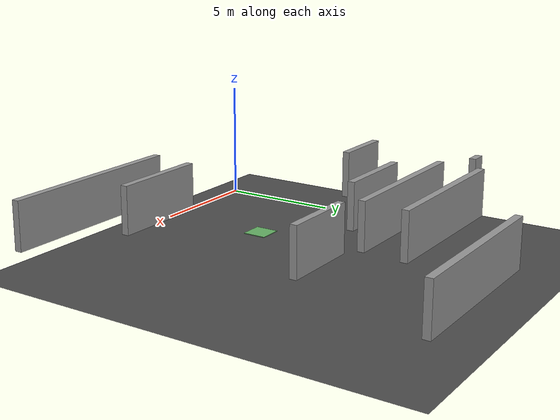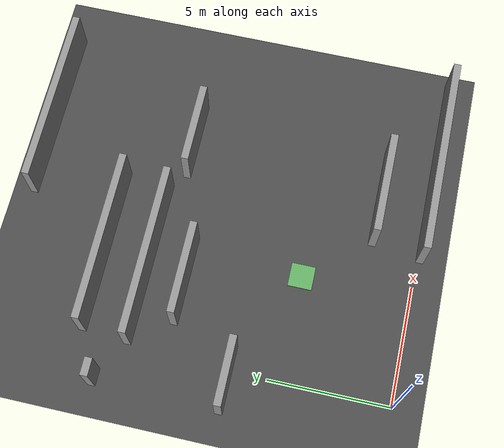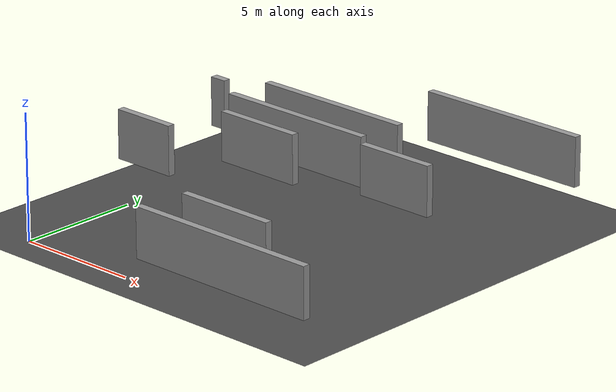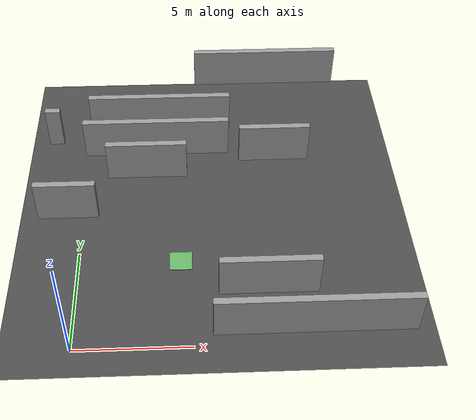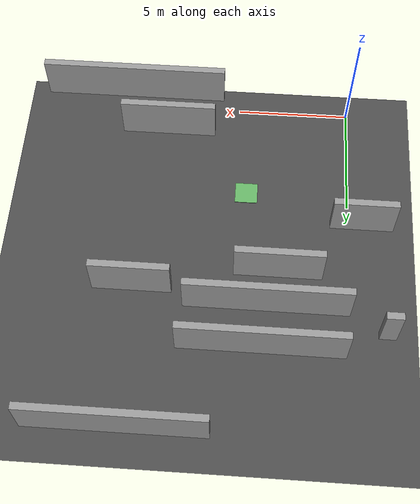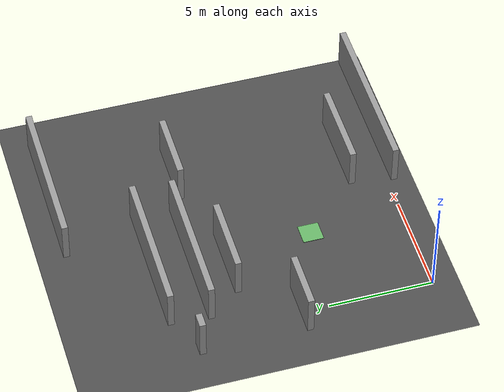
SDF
<sdf version="1.6">
 <world name="default">
  <model name="ground_plane">
   <static>1</static>
   <link name="link">
    <collision name="collision">
     <geometry><plane><normal>0 0 1</normal><size>20 20</size></plane></geometry>
     <surface><friction><ode><mu>100</mu><mu2>50</mu2></ode></friction></surface>
    </collision>
    <visual name="visual">
     <cast_shadows>0</cast_shadows>
     <geometry><plane><normal>0 0 1</normal><size>20 20</size></plane></geometry>
     <material>
      <script>
       <uri>model://asphalt_plane/materials/scripts</uri>
       <uri>model://asphalt_plane/materials/textures</uri>
       <name>vrc/asphalt</name>
      </script>
     </material>
    </visual>
   </link>
  </model>
  <model name="box_goal">
   <static>1</static>
   <link name="link">
    <inertial>
     <mass>1</mass>
     <inertia>
      <ixx>0.166667</ixx>
      <ixy>0</ixy>
      <ixz>0</ixz>
      <iyy>0.166667</iyy>
      <iyz>0</iyz>
      <izz>0.166667</izz>
     </inertia>
    </inertial>
    <visual name="visual">
     <geometry><box><size>1 1 0.1</size></box></geometry>
     <material>
      <script><name>Gazebo/Grey</name><uri>file://media/materials/scripts/gazebo.material</uri></script>
      <ambient>0.3 1 0.3 1</ambient>
      <diffuse>0.4 0.7 0.4 1</diffuse>
      <specular>0.01 0.05 0.01 1</specular>
      <emissive>0 0.02 0 1</emissive>
      <shader type="vertex"><normal_map>__default__</normal_map></shader>
     </material>
    </visual>
    <collision name="collision">
     <geometry><box><size>1 1 0.1</size></box></geometry>
     <surface>
      <friction>
       <ode><mu>1</mu><mu2>1</mu2><fdir1>0 0 0</fdir1><slip1>0</slip1><slip2>0</slip2></ode>
       <torsional>
        <coefficient>1</coefficient>
        <patch_radius>0</patch_radius>
        <surface_radius>0</surface_radius>
        <use_patch_radius>1</use_patch_radius>
        <ode><slip>0</slip></ode>
       </torsional>
      </friction>
      <bounce><restitution_coefficient>0</restitution_coefficient><threshold>1e+06</threshold></bounce>
      <contact>
       <collide_without_contact>0</collide_without_contact>
       <collide_without_contact_bitmask>1</collide_without_contact_bitmask>
       <collide_bitmask>1</collide_bitmask>
       <ode>
        <soft_cfm>0</soft_cfm>
        <soft_erp>0.2</soft_erp>
        <kp>1e+13</kp>
        <kd>1</kd>
        <max_vel>0.01</max_vel>
        <min_depth>0</min_depth>
       </ode>
       <bullet>
        <split_impulse>1</split_impulse>
        <split_impulse_penetration_threshold>-0.01</split_impulse_penetration_threshold>
        <soft_cfm>0</soft_cfm>
        <soft_erp>0.2</soft_erp>
        <kp>1e+13</kp>
        <kd>1</kd>
       </bullet>
      </contact>
     </surface>
    </collision>
   </link>
   <static>0</static>
   <pose>4.5 4.5 -0.042 0 -0 0</pose>
  </model>
  <model name="greywall_8L36S">
   <link name="link">
    <pose>4.925 0 1 0 0 0</pose>
    <inertial>
     <mass>20</mass>
     <inertia><ixx>1</ixx><ixy>0</ixy><ixz>0</ixz><iyy>1</iyy><iyz>0</iyz><izz>1</izz></inertia>
    </inertial>
    <visual name="ModelPreview_1::link::visual_1">
     <geometry><box><size>8.15 0.3 2.0</size></box></geometry>
     <material>
      <script>
       <uri>model://grey_wall/materials/scripts</uri>
       <uri>model://grey_wall/materials/textures</uri>
       <name>vrc/grey_wall</name>
      </script>
      <ambient>1 1 1 1</ambient>
      <diffuse>1 1 1 1</diffuse>
      <specular>0 0 0 1</specular>
      <emissive>0 0 0 1</emissive>
      <shader type="vertex"><normal_map>__default__</normal_map></shader>
     </material>
    </visual>
    <collision name="collision">
     <geometry><box><size>8.15 0.3 2.0</size></box></geometry>
     <surface>
      <friction>
       <ode><mu>1</mu><mu2>1</mu2><fdir1>0 0 0</fdir1><slip1>0</slip1><slip2>0</slip2></ode>
       <torsional>
        <coefficient>1</coefficient>
        <patch_radius>0</patch_radius>
        <surface_radius>0</surface_radius>
        <use_patch_radius>1</use_patch_radius>
        <ode><slip>0</slip></ode>
       </torsional>
      </friction>
      <bounce><restitution_coefficient>0</restitution_coefficient><threshold>1e+06</threshold></bounce>
      <contact>
       <collide_without_contact>0</collide_without_contact>
       <collide_without_contact_bitmask>1</collide_without_contact_bitmask>
       <collide_bitmask>1</collide_bitmask>
       <ode>
        <soft_cfm>0</soft_cfm>
        <soft_erp>0.2</soft_erp>
        <kp>1e+13</kp>
        <kd>1</kd>
        <max_vel>0.01</max_vel>
        <min_depth>0</min_depth>
       </ode>
       <bullet>
        <split_impulse>1</split_impulse>
        <split_impulse_penetration_threshold>-0.01</split_impulse_penetration_threshold>
        <soft_cfm>0</soft_cfm>
        <soft_erp>0.2</soft_erp>
        <kp>1e+13</kp>
        <kd>1</kd>
       </bullet>
      </contact>
     </surface>
    </collision>
   </link>
   <static>1</static>
   <pose>4.925 0 1 0 0 0</pose>
  </model>
  <model name="greywall_7L66W">
   <link name="link">
    <pose>7 3.575 1 0 0 1.57</pose>
    <inertial>
     <mass>20</mass>
     <inertia><ixx>1</ixx><ixy>0</ixy><ixz>0</ixz><iyy>1</iyy><iyz>0</iyz><izz>1</izz></inertia>
    </inertial>
    <visual name="ModelPreview_1::link::visual_1">
     <geometry><box><size>6.85 0.3 2.0</size></box></geometry>
     <material>
      <script>
       <uri>model://grey_wall/materials/scripts</uri>
       <uri>model://grey_wall/materials/textures</uri>
       <name>vrc/grey_wall</name>
      </script>
      <ambient>1 1 1 1</ambient>
      <diffuse>1 1 1 1</diffuse>
      <specular>0 0 0 1</specular>
      <emissive>0 0 0 1</emissive>
      <shader type="vertex"><normal_map>__default__</normal_map></shader>
     </material>
    </visual>
    <collision name="collision">
     <geometry><box><size>6.85 0.3 2.0</size></box></geometry>
     <surface>
      <friction>
       <ode><mu>1</mu><mu2>1</mu2><fdir1>0 0 0</fdir1><slip1>0</slip1><slip2>0</slip2></ode>
       <torsional>
        <coefficient>1</coefficient>
        <patch_radius>0</patch_radius>
        <surface_radius>0</surface_radius>
        <use_patch_radius>1</use_patch_radius>
        <ode><slip>0</slip></ode>
       </torsional>
      </friction>
      <bounce><restitution_coefficient>0</restitution_coefficient><threshold>1e+06</threshold></bounce>
      <contact>
       <collide_without_contact>0</collide_without_contact>
       <collide_without_contact_bitmask>1</collide_without_contact_bitmask>
       <collide_bitmask>1</collide_bitmask>
       <ode>
        <soft_cfm>0</soft_cfm>
        <soft_erp>0.2</soft_erp>
        <kp>1e+13</kp>
        <kd>1</kd>
        <max_vel>0.01</max_vel>
        <min_depth>0</min_depth>
       </ode>
       <bullet>
        <split_impulse>1</split_impulse>
        <split_impulse_penetration_threshold>-0.01</split_impulse_penetration_threshold>
        <soft_cfm>0</soft_cfm>
        <soft_erp>0.2</soft_erp>
        <kp>1e+13</kp>
        <kd>1</kd>
       </bullet>
      </contact>
     </surface>
    </collision>
   </link>
   <static>1</static>
   <pose>7 3.575 1 0 0 1.57</pose>
  </model>
  <model name="greywall_7L76W">
   <link name="link">
    <pose>8 4.425 1 0 0 1.57</pose>
    <inertial>
     <mass>20</mass>
     <inertia><ixx>1</ixx><ixy>0</ixy><ixz>0</ixz><iyy>1</iyy><iyz>0</iyz><izz>1</izz></inertia>
    </inertial>
    <visual name="ModelPreview_1::link::visual_1">
     <geometry><box><size>6.85 0.3 2.0</size></box></geometry>
     <material>
      <script>
       <uri>model://grey_wall/materials/scripts</uri>
       <uri>model://grey_wall/materials/textures</uri>
       <name>vrc/grey_wall</name>
      </script>
      <ambient>1 1 1 1</ambient>
      <diffuse>1 1 1 1</diffuse>
      <specular>0 0 0 1</specular>
      <emissive>0 0 0 1</emissive>
      <shader type="vertex"><normal_map>__default__</normal_map></shader>
     </material>
    </visual>
    <collision name="collision">
     <geometry><box><size>6.85 0.3 2.0</size></box></geometry>
     <surface>
      <friction>
       <ode><mu>1</mu><mu2>1</mu2><fdir1>0 0 0</fdir1><slip1>0</slip1><slip2>0</slip2></ode>
       <torsional>
        <coefficient>1</coefficient>
        <patch_radius>0</patch_radius>
        <surface_radius>0</surface_radius>
        <use_patch_radius>1</use_patch_radius>
        <ode><slip>0</slip></ode>
       </torsional>
      </friction>
      <bounce><restitution_coefficient>0</restitution_coefficient><threshold>1e+06</threshold></bounce>
      <contact>
       <collide_without_contact>0</collide_without_contact>
       <collide_without_contact_bitmask>1</collide_without_contact_bitmask>
       <collide_bitmask>1</collide_bitmask>
       <ode>
        <soft_cfm>0</soft_cfm>
        <soft_erp>0.2</soft_erp>
        <kp>1e+13</kp>
        <kd>1</kd>
        <max_vel>0.01</max_vel>
        <min_depth>0</min_depth>
       </ode>
       <bullet>
        <split_impulse>1</split_impulse>
        <split_impulse_penetration_threshold>-0.01</split_impulse_penetration_threshold>
        <soft_cfm>0</soft_cfm>
        <soft_erp>0.2</soft_erp>
        <kp>1e+13</kp>
        <kd>1</kd>
       </bullet>
      </contact>
     </surface>
    </collision>
   </link>
   <static>1</static>
   <pose>8 4.425 1 0 0 1.57</pose>
  </model>
  <model name="greywall_7L43N">
   <link name="link">
    <pose>4.5 8 1 0 0 0</pose>
    <inertial>
     <mass>20</mass>
     <inertia><ixx>1</ixx><ixy>0</ixy><ixz>0</ixz><iyy>1</iyy><iyz>0</iyz><izz>1</izz></inertia>
    </inertial>
    <visual name="ModelPreview_1::link::visual_1">
     <geometry><box><size>7.3 0.3 2.0</size></box></geometry>
     <material>
      <script>
       <uri>model://grey_wall/materials/scripts</uri>
       <uri>model://grey_wall/materials/textures</uri>
       <name>vrc/grey_wall</name>
      </script>
      <ambient>1 1 1 1</ambient>
      <diffuse>1 1 1 1</diffuse>
      <specular>0 0 0 1</specular>
      <emissive>0 0 0 1</emissive>
      <shader type="vertex"><normal_map>__default__</normal_map></shader>
     </material>
    </visual>
    <collision name="collision">
     <geometry><box><size>7.3 0.3 2.0</size></box></geometry>
     <surface>
      <friction>
       <ode><mu>1</mu><mu2>1</mu2><fdir1>0 0 0</fdir1><slip1>0</slip1><slip2>0</slip2></ode>
       <torsional>
        <coefficient>1</coefficient>
        <patch_radius>0</patch_radius>
        <surface_radius>0</surface_radius>
        <use_patch_radius>1</use_patch_radius>
        <ode><slip>0</slip></ode>
       </torsional>
      </friction>
      <bounce><restitution_coefficient>0</restitution_coefficient><threshold>1e+06</threshold></bounce>
      <contact>
       <collide_without_contact>0</collide_without_contact>
       <collide_without_contact_bitmask>1</collide_without_contact_bitmask>
       <collide_bitmask>1</collide_bitmask>
       <ode>
        <soft_cfm>0</soft_cfm>
        <soft_erp>0.2</soft_erp>
        <kp>1e+13</kp>
        <kd>1</kd>
        <max_vel>0.01</max_vel>
        <min_depth>0</min_depth>
       </ode>
       <bullet>
        <split_impulse>1</split_impulse>
        <split_impulse_penetration_threshold>-0.01</split_impulse_penetration_threshold>
        <soft_cfm>0</soft_cfm>
        <soft_erp>0.2</soft_erp>
        <kp>1e+13</kp>
        <kd>1</kd>
       </bullet>
      </contact>
     </surface>
    </collision>
   </link>
   <static>1</static>
   <pose>4.5 8 1 0 0 0</pose>
  </model>
  <model name="greywall_1L51W">
   <link name="link">
    <pose>5 6.5 1 0 0 1.57</pose>
    <inertial>
     <mass>20</mass>
     <inertia><ixx>1</ixx><ixy>0</ixy><ixz>0</ixz><iyy>1</iyy><iyz>0</iyz><izz>1</izz></inertia>
    </inertial>
    <visual name="ModelPreview_1::link::visual_1">
     <geometry><box><size>0.7 0.3 2.0</size></box></geometry>
     <material>
      <script>
       <uri>model://grey_wall/materials/scripts</uri>
       <uri>model://grey_wall/materials/textures</uri>
       <name>vrc/grey_wall</name>
      </script>
      <ambient>1 1 1 1</ambient>
      <diffuse>1 1 1 1</diffuse>
      <specular>0 0 0 1</specular>
      <emissive>0 0 0 1</emissive>
      <shader type="vertex"><normal_map>__default__</normal_map></shader>
     </material>
    </visual>
    <collision name="collision">
     <geometry><box><size>0.7 0.3 2.0</size></box></geometry>
     <surface>
      <friction>
       <ode><mu>1</mu><mu2>1</mu2><fdir1>0 0 0</fdir1><slip1>0</slip1><slip2>0</slip2></ode>
       <torsional>
        <coefficient>1</coefficient>
        <patch_radius>0</patch_radius>
        <surface_radius>0</surface_radius>
        <use_patch_radius>1</use_patch_radius>
        <ode><slip>0</slip></ode>
       </torsional>
      </friction>
      <bounce><restitution_coefficient>0</restitution_coefficient><threshold>1e+06</threshold></bounce>
      <contact>
       <collide_without_contact>0</collide_without_contact>
       <collide_without_contact_bitmask>1</collide_without_contact_bitmask>
       <collide_bitmask>1</collide_bitmask>
       <ode>
        <soft_cfm>0</soft_cfm>
        <soft_erp>0.2</soft_erp>
        <kp>1e+13</kp>
        <kd>1</kd>
        <max_vel>0.01</max_vel>
        <min_depth>0</min_depth>
       </ode>
       <bullet>
        <split_impulse>1</split_impulse>
        <split_impulse_penetration_threshold>-0.01</split_impulse_penetration_threshold>
        <soft_cfm>0</soft_cfm>
        <soft_erp>0.2</soft_erp>
        <kp>1e+13</kp>
        <kd>1</kd>
       </bullet>
      </contact>
     </surface>
    </collision>
   </link>
   <static>1</static>
   <pose>5 6.5 1 0 0 1.57</pose>
  </model>
  <model name="greywall_3L40N">
   <link name="link">
    <pose>4.5 5 1 0 0 0</pose>
    <inertial>
     <mass>20</mass>
     <inertia><ixx>1</ixx><ixy>0</ixy><ixz>0</ixz><iyy>1</iyy><iyz>0</iyz><izz>1</izz></inertia>
    </inertial>
    <visual name="ModelPreview_1::link::visual_1">
     <geometry><box><size>3.3 0.3 2.0</size></box></geometry>
     <material>
      <script>
       <uri>model://grey_wall/materials/scripts</uri>
       <uri>model://grey_wall/materials/textures</uri>
       <name>vrc/grey_wall</name>
      </script>
      <ambient>1 1 1 1</ambient>
      <diffuse>1 1 1 1</diffuse>
      <specular>0 0 0 1</specular>
      <emissive>0 0 0 1</emissive>
      <shader type="vertex"><normal_map>__default__</normal_map></shader>
     </material>
    </visual>
    <collision name="collision">
     <geometry><box><size>3.3 0.3 2.0</size></box></geometry>
     <surface>
      <friction>
       <ode><mu>1</mu><mu2>1</mu2><fdir1>0 0 0</fdir1><slip1>0</slip1><slip2>0</slip2></ode>
       <torsional>
        <coefficient>1</coefficient>
        <patch_radius>0</patch_radius>
        <surface_radius>0</surface_radius>
        <use_patch_radius>1</use_patch_radius>
        <ode><slip>0</slip></ode>
       </torsional>
      </friction>
      <bounce><restitution_coefficient>0</restitution_coefficient><threshold>1e+06</threshold></bounce>
      <contact>
       <collide_without_contact>0</collide_without_contact>
       <collide_without_contact_bitmask>1</collide_without_contact_bitmask>
       <collide_bitmask>1</collide_bitmask>
       <ode>
        <soft_cfm>0</soft_cfm>
        <soft_erp>0.2</soft_erp>
        <kp>1e+13</kp>
        <kd>1</kd>
        <max_vel>0.01</max_vel>
        <min_depth>0</min_depth>
       </ode>
       <bullet>
        <split_impulse>1</split_impulse>
        <split_impulse_penetration_threshold>-0.01</split_impulse_penetration_threshold>
        <soft_cfm>0</soft_cfm>
        <soft_erp>0.2</soft_erp>
        <kp>1e+13</kp>
        <kd>1</kd>
       </bullet>
      </contact>
     </surface>
    </collision>
   </link>
   <static>1</static>
   <pose>4.5 5 1 0 0 0</pose>
  </model>
  <model name="greywall_4L19S">
   <link name="link">
    <pose>4.075 1 1 0 0 0</pose>
    <inertial>
     <mass>20</mass>
     <inertia><ixx>1</ixx><ixy>0</ixy><ixz>0</ixz><iyy>1</iyy><iyz>0</iyz><izz>1</izz></inertia>
    </inertial>
    <visual name="ModelPreview_1::link::visual_1">
     <geometry><box><size>4.15 0.3 2.0</size></box></geometry>
     <material>
      <script>
       <uri>model://grey_wall/materials/scripts</uri>
       <uri>model://grey_wall/materials/textures</uri>
       <name>vrc/grey_wall</name>
      </script>
      <ambient>1 1 1 1</ambient>
      <diffuse>1 1 1 1</diffuse>
      <specular>0 0 0 1</specular>
      <emissive>0 0 0 1</emissive>
      <shader type="vertex"><normal_map>__default__</normal_map></shader>
     </material>
    </visual>
    <collision name="collision">
     <geometry><box><size>4.15 0.3 2.0</size></box></geometry>
     <surface>
      <friction>
       <ode><mu>1</mu><mu2>1</mu2><fdir1>0 0 0</fdir1><slip1>0</slip1><slip2>0</slip2></ode>
       <torsional>
        <coefficient>1</coefficient>
        <patch_radius>0</patch_radius>
        <surface_radius>0</surface_radius>
        <use_patch_radius>1</use_patch_radius>
        <ode><slip>0</slip></ode>
       </torsional>
      </friction>
      <bounce><restitution_coefficient>0</restitution_coefficient><threshold>1e+06</threshold></bounce>
      <contact>
       <collide_without_contact>0</collide_without_contact>
       <collide_without_contact_bitmask>1</collide_without_contact_bitmask>
       <collide_bitmask>1</collide_bitmask>
       <ode>
        <soft_cfm>0</soft_cfm>
        <soft_erp>0.2</soft_erp>
        <kp>1e+13</kp>
        <kd>1</kd>
        <max_vel>0.01</max_vel>
        <min_depth>0</min_depth>
       </ode>
       <bullet>
        <split_impulse>1</split_impulse>
        <split_impulse_penetration_threshold>-0.01</split_impulse_penetration_threshold>
        <soft_cfm>0</soft_cfm>
        <soft_erp>0.2</soft_erp>
        <kp>1e+13</kp>
        <kd>1</kd>
       </bullet>
      </contact>
     </surface>
    </collision>
   </link>
   <static>1</static>
   <pose>4.075 1 1 0 0 0</pose>
  </model>
  <model name="greywall_3L30W">
   <link name="link">
    <pose>3 3.5 1 0 0 1.57</pose>
    <inertial>
     <mass>20</mass>
     <inertia><ixx>1</ixx><ixy>0</ixy><ixz>0</ixz><iyy>1</iyy><iyz>0</iyz><izz>1</izz></inertia>
    </inertial>
    <visual name="ModelPreview_1::link::visual_1">
     <geometry><box><size>2.7 0.3 2.0</size></box></geometry>
     <material>
      <script>
       <uri>model://grey_wall/materials/scripts</uri>
       <uri>model://grey_wall/materials/textures</uri>
       <name>vrc/grey_wall</name>
      </script>
      <ambient>1 1 1 1</ambient>
      <diffuse>1 1 1 1</diffuse>
      <specular>0 0 0 1</specular>
      <emissive>0 0 0 1</emissive>
      <shader type="vertex"><normal_map>__default__</normal_map></shader>
     </material>
    </visual>
    <collision name="collision">
     <geometry><box><size>2.7 0.3 2.0</size></box></geometry>
     <surface>
      <friction>
       <ode><mu>1</mu><mu2>1</mu2><fdir1>0 0 0</fdir1><slip1>0</slip1><slip2>0</slip2></ode>
       <torsional>
        <coefficient>1</coefficient>
        <patch_radius>0</patch_radius>
        <surface_radius>0</surface_radius>
        <use_patch_radius>1</use_patch_radius>
        <ode><slip>0</slip></ode>
       </torsional>
      </friction>
      <bounce><restitution_coefficient>0</restitution_coefficient><threshold>1e+06</threshold></bounce>
      <contact>
       <collide_without_contact>0</collide_without_contact>
       <collide_without_contact_bitmask>1</collide_without_contact_bitmask>
       <collide_bitmask>1</collide_bitmask>
       <ode>
        <soft_cfm>0</soft_cfm>
        <soft_erp>0.2</soft_erp>
        <kp>1e+13</kp>
        <kd>1</kd>
        <max_vel>0.01</max_vel>
        <min_depth>0</min_depth>
       </ode>
       <bullet>
        <split_impulse>1</split_impulse>
        <split_impulse_penetration_threshold>-0.01</split_impulse_penetration_threshold>
        <soft_cfm>0</soft_cfm>
        <soft_erp>0.2</soft_erp>
        <kp>1e+13</kp>
        <kd>1</kd>
       </bullet>
      </contact>
     </surface>
    </collision>
   </link>
   <static>1</static>
   <pose>3 3.5 1 0 0 1.57</pose>
  </model>
  <model name="greywall_4L48E">
   <link name="link">
    <pose>6 3 1 0 0 1.57</pose>
    <inertial>
     <mass>20</mass>
     <inertia><ixx>1</ixx><ixy>0</ixy><ixz>0</ixz><iyy>1</iyy><iyz>0</iyz><izz>1</izz></inertia>
    </inertial>
    <visual name="ModelPreview_1::link::visual_1">
     <geometry><box><size>3.7 0.3 2.0</size></box></geometry>
     <material>
      <script>
       <uri>model://grey_wall/materials/scripts</uri>
       <uri>model://grey_wall/materials/textures</uri>
       <name>vrc/grey_wall</name>
      </script>
      <ambient>1 1 1 1</ambient>
      <diffuse>1 1 1 1</diffuse>
      <specular>0 0 0 1</specular>
      <emissive>0 0 0 1</emissive>
      <shader type="vertex"><normal_map>__default__</normal_map></shader>
     </material>
    </visual>
    <collision name="collision">
     <geometry><box><size>3.7 0.3 2.0</size></box></geometry>
     <surface>
      <friction>
       <ode><mu>1</mu><mu2>1</mu2><fdir1>0 0 0</fdir1><slip1>0</slip1><slip2>0</slip2></ode>
       <torsional>
        <coefficient>1</coefficient>
        <patch_radius>0</patch_radius>
        <surface_radius>0</surface_radius>
        <use_patch_radius>1</use_patch_radius>
        <ode><slip>0</slip></ode>
       </torsional>
      </friction>
      <bounce><restitution_coefficient>0</restitution_coefficient><threshold>1e+06</threshold></bounce>
      <contact>
       <collide_without_contact>0</collide_without_contact>
       <collide_without_contact_bitmask>1</collide_without_contact_bitmask>
       <collide_bitmask>1</collide_bitmask>
       <ode>
        <soft_cfm>0</soft_cfm>
        <soft_erp>0.2</soft_erp>
        <kp>1e+13</kp>
        <kd>1</kd>
        <max_vel>0.01</max_vel>
        <min_depth>0</min_depth>
       </ode>
       <bullet>
        <split_impulse>1</split_impulse>
        <split_impulse_penetration_threshold>-0.01</split_impulse_penetration_threshold>
        <soft_cfm>0</soft_cfm>
        <soft_erp>0.2</soft_erp>
        <kp>1e+13</kp>
        <kd>1</kd>
       </bullet>
      </contact>
     </surface>
    </collision>
   </link>
   <static>1</static>
   <pose>6 3 1 0 0 1.57</pose>
  </model>
 </world>
</sdf>
